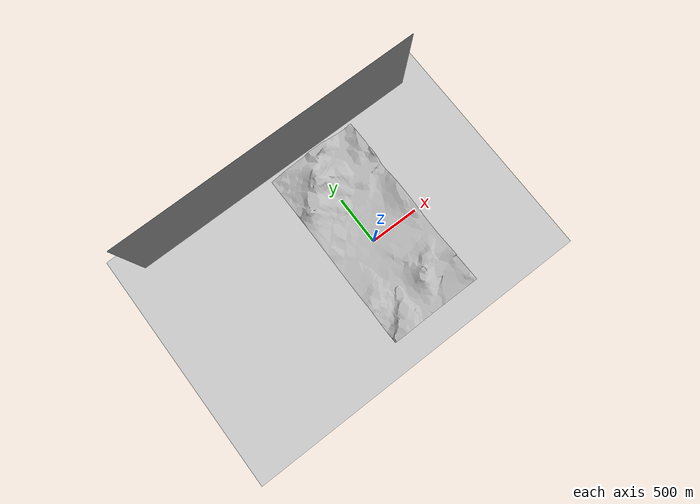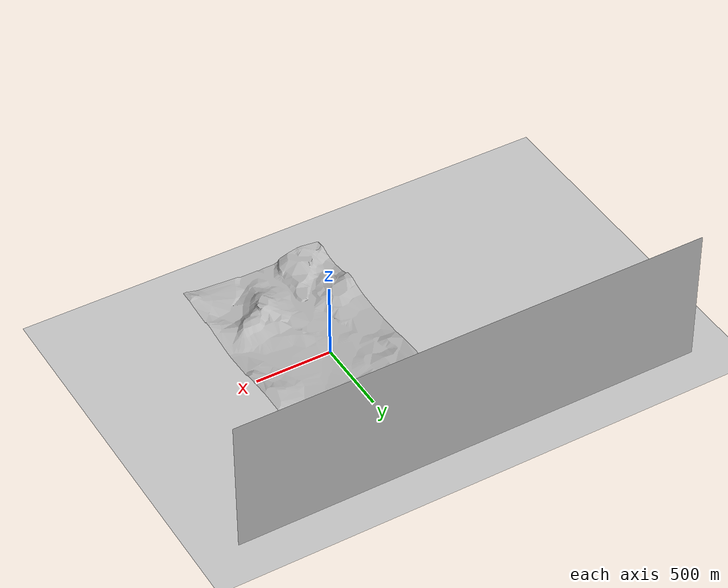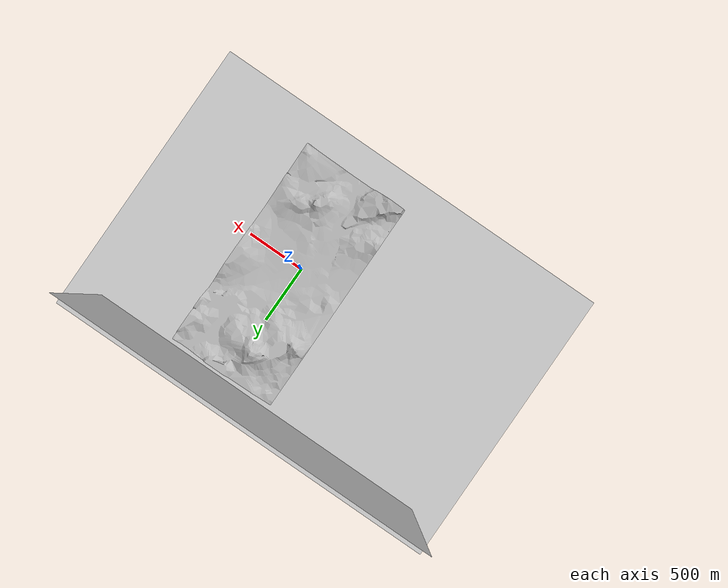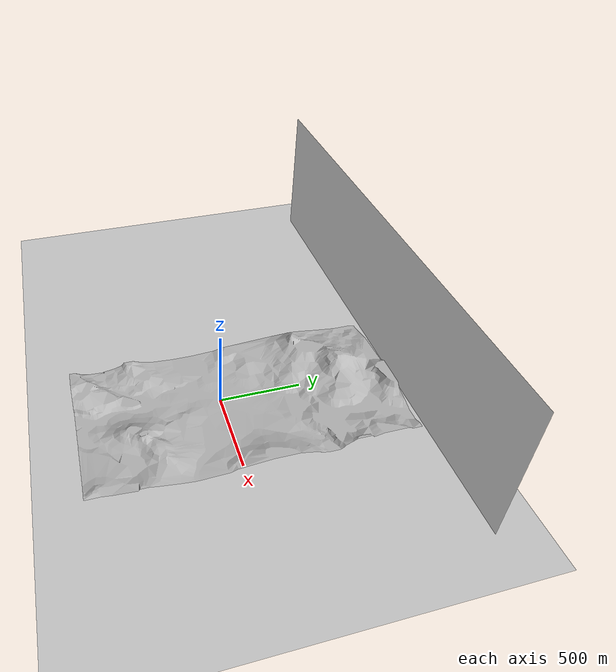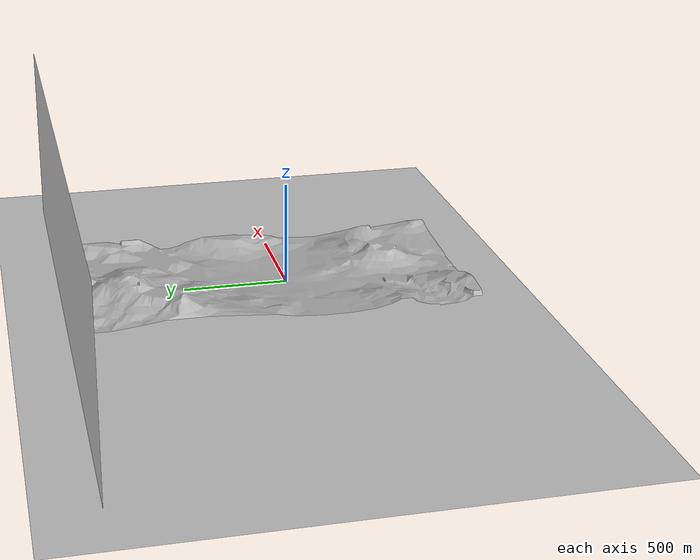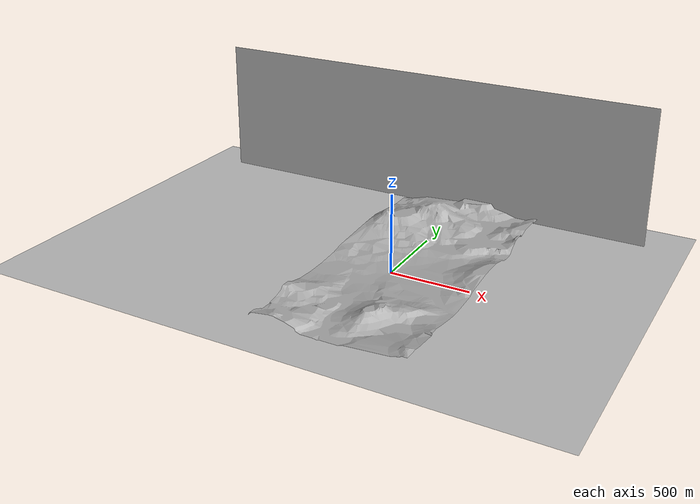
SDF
<sdf version="1.4">
 <world name="default">
  <physics type="ode">
   <gravity>0 0 -9.81</gravity>
   <ode>
    <solver><type>quick</type><iters>20</iters><sor>1.0</sor></solver>
    <constraints>
     <cfm>0.0</cfm>
     <erp>0.2</erp>
     <contact_max_correcting_vel>100.0</contact_max_correcting_vel>
     <contact_surface_layer>0.0</contact_surface_layer>
    </constraints>
   </ode>
   <real_time_update_rate>1000</real_time_update_rate>
   <max_step_size>0.001</max_step_size>
  </physics>
  <light name="light1" type="directional">
   <pose>-6 0 6 0 0.6 0</pose>
   <diffuse>0.0 0.0 0.0 1.0</diffuse>
   <specular>0.1 0.1 0.1 1</specular>
   <attenuation>
    <range>30</range>
    <constant>0.9</constant>
    <linear>0.01</linear>
    <quadratic>0.001</quadratic>
   </attenuation>
   <direction>0.2 0.0 -1.0</direction>
  </light>
  <include><uri>model://sun</uri></include>
  <include><uri>model://desert</uri><pose>25.0 -30 -34 0 0 0.0</pose></include>
  <model name="ground_plane">
   <static>1</static>
   <link name="link">
    <collision name="collision">
     <geometry><plane><normal>0 0 1</normal><size>100 100</size></plane></geometry>
     <surface><friction><ode><mu>100</mu><mu2>50</mu2></ode></friction></surface>
    </collision>
    <visual name="visual">
     <cast_shadows>0</cast_shadows>
     <geometry><plane><normal>0 0 1</normal><size>100 100</size></plane></geometry>
     <material>
      <script><uri>file://media/materials/scripts/gazebo.material</uri><name>Gazebo/Grey</name></script>
     </material>
    </visual>
   </link>
  </model>
  <model name="drc_practice_4x4x20_6">
   <pose>-0.684784 -0.095033 0.099548 -1e-06 -0 -1.55908</pose>
   <link name="lumber_4x4x20::link">
    <inertial>
     <mass>1.37</mass>
     <inertia><ixx>0.0018</ixx><ixy>0</ixy><ixz>0</ixz><iyy>0.0303</iyy><iyz>0</iyz><izz>0.0303</izz></inertia>
    </inertial>
    <collision name="collision">
     <geometry><box><size>0.508 0.0888 0.0888</size></box></geometry>
     <surface>
      <bounce><restitution_coefficient>0</restitution_coefficient><threshold>2</threshold></bounce>
      <friction><ode><mu>10</mu><mu2>10</mu2></ode></friction>
      <contact><ode><soft_cfm>0.001</soft_cfm><kp>100000</kp><kd>1000</kd></ode></contact>
     </surface>
    </collision>
    <visual name="visual">
     <geometry><mesh><uri>model://drc_practice_4x4x20/meshes/4x4x20.dae</uri></mesh></geometry>
    </visual>
   </link>
  </model>
  <model name="drc_practice_4x4x20_3">
   <pose>0.315581 0.035823 0.099548 -1e-06 -0 -1.61947</pose>
   <link name="lumber_4x4x20::link">
    <inertial>
     <mass>1.37</mass>
     <inertia><ixx>0.0018</ixx><ixy>0</ixy><ixz>0</ixz><iyy>0.0303</iyy><iyz>0</iyz><izz>0.0303</izz></inertia>
    </inertial>
    <collision name="collision">
     <geometry><box><size>0.508 0.0888 0.0888</size></box></geometry>
     <surface>
      <bounce><restitution_coefficient>0</restitution_coefficient><threshold>2</threshold></bounce>
      <friction><ode><mu>10</mu><mu2>10</mu2></ode></friction>
      <contact><ode><soft_cfm>0.001</soft_cfm><kp>100000</kp><kd>1000</kd></ode></contact>
     </surface>
    </collision>
    <visual name="visual">
     <geometry><mesh><uri>model://drc_practice_4x4x20/meshes/4x4x20.dae</uri></mesh></geometry>
    </visual>
   </link>
  </model>
  <model name="drc_practice_4x4x20_8">
   <pose>-0.652132 -1.14382 0.099548 -1e-06 1.05879e-22 -1.55009</pose>
   <link name="lumber_4x4x20::link">
    <inertial>
     <mass>1.37</mass>
     <inertia><ixx>0.0018</ixx><ixy>0</ixy><ixz>0</ixz><iyy>0.0303</iyy><iyz>0</iyz><izz>0.0303</izz></inertia>
    </inertial>
    <collision name="collision">
     <geometry><box><size>0.508 0.0888 0.0888</size></box></geometry>
     <surface>
      <bounce><restitution_coefficient>0</restitution_coefficient><threshold>2</threshold></bounce>
      <friction><ode><mu>10</mu><mu2>10</mu2></ode></friction>
      <contact><ode><soft_cfm>0.001</soft_cfm><kp>100000</kp><kd>1000</kd></ode></contact>
     </surface>
    </collision>
    <visual name="visual">
     <geometry><mesh><uri>model://drc_practice_4x4x20/meshes/4x4x20.dae</uri></mesh></geometry>
    </visual>
   </link>
  </model>
  <model name="drc_practice_4x4x20_9">
   <pose>0.2907 -1.12778 0.099548 -1e-06 -0 -1.58067</pose>
   <link name="lumber_4x4x20::link">
    <inertial>
     <mass>1.37</mass>
     <inertia><ixx>0.0018</ixx><ixy>0</ixy><ixz>0</ixz><iyy>0.0303</iyy><iyz>0</iyz><izz>0.0303</izz></inertia>
    </inertial>
    <collision name="collision">
     <geometry><box><size>0.508 0.0888 0.0888</size></box></geometry>
     <surface>
      <bounce><restitution_coefficient>0</restitution_coefficient><threshold>2</threshold></bounce>
      <friction><ode><mu>10</mu><mu2>10</mu2></ode></friction>
      <contact><ode><soft_cfm>0.001</soft_cfm><kp>100000</kp><kd>1000</kd></ode></contact>
     </surface>
    </collision>
    <visual name="visual">
     <geometry><mesh><uri>model://drc_practice_4x4x20/meshes/4x4x20.dae</uri></mesh></geometry>
    </visual>
   </link>
  </model>
  <model name="drc_practice_4x4x20_2">
   <pose>0.304742 -0.47945 0.099548 -1e-06 -0 1.54526</pose>
   <link name="lumber_4x4x20::link">
    <inertial>
     <mass>1.37</mass>
     <inertia><ixx>0.0018</ixx><ixy>0</ixy><ixz>0</ixz><iyy>0.0303</iyy><iyz>0</iyz><izz>0.0303</izz></inertia>
    </inertial>
    <collision name="collision">
     <geometry><box><size>0.508 0.0888 0.0888</size></box></geometry>
     <surface>
      <bounce><restitution_coefficient>0</restitution_coefficient><threshold>2</threshold></bounce>
      <friction><ode><mu>10</mu><mu2>10</mu2></ode></friction>
      <contact><ode><soft_cfm>0.001</soft_cfm><kp>100000</kp><kd>1000</kd></ode></contact>
     </surface>
    </collision>
    <visual name="visual">
     <geometry><mesh><uri>model://drc_practice_4x4x20/meshes/4x4x20.dae</uri></mesh></geometry>
    </visual>
   </link>
  </model>
  <model name="drc_practice_4x4x20_4">
   <pose>0.018767 0.246838 0.099548 -1e-06 2.58494e-26 -0.000303</pose>
   <link name="lumber_4x4x20::link">
    <inertial>
     <mass>1.37</mass>
     <inertia><ixx>0.0018</ixx><ixy>0</ixy><ixz>0</ixz><iyy>0.0303</iyy><iyz>0</iyz><izz>0.0303</izz></inertia>
    </inertial>
    <collision name="collision">
     <geometry><box><size>0.508 0.0888 0.0888</size></box></geometry>
     <surface>
      <bounce><restitution_coefficient>0</restitution_coefficient><threshold>2</threshold></bounce>
      <friction><ode><mu>10</mu><mu2>10</mu2></ode></friction>
      <contact><ode><soft_cfm>0.001</soft_cfm><kp>100000</kp><kd>1000</kd></ode></contact>
     </surface>
    </collision>
    <visual name="visual">
     <geometry><mesh><uri>model://drc_practice_4x4x20/meshes/4x4x20.dae</uri></mesh></geometry>
    </visual>
   </link>
  </model>
  <model name="drc_practice_4x4x20_5">
   <pose>-0.490747 0.239631 0.099548 -1e-06 8.27181e-25 0.01284</pose>
   <link name="lumber_4x4x20::link">
    <inertial>
     <mass>1.37</mass>
     <inertia><ixx>0.0018</ixx><ixy>0</ixy><ixz>0</ixz><iyy>0.0303</iyy><iyz>0</iyz><izz>0.0303</izz></inertia>
    </inertial>
    <collision name="collision">
     <geometry><box><size>0.508 0.0888 0.0888</size></box></geometry>
     <surface>
      <bounce><restitution_coefficient>0</restitution_coefficient><threshold>2</threshold></bounce>
      <friction><ode><mu>10</mu><mu2>10</mu2></ode></friction>
      <contact><ode><soft_cfm>0.001</soft_cfm><kp>100000</kp><kd>1000</kd></ode></contact>
     </surface>
    </collision>
    <visual name="visual">
     <geometry><mesh><uri>model://drc_practice_4x4x20/meshes/4x4x20.dae</uri></mesh></geometry>
    </visual>
   </link>
  </model>
  <model name="drc_practice_base_4x8_0">
   <pose>-0.146396 -0.903118 0.029782 0 -0 0</pose>
   <static>1</static>
   <link name="drc_practice_base::platform">
    <collision name="collision">
     <geometry><box><size>1.2192 2.4384 0.0254</size></box></geometry>
     <surface><friction><ode><mu>100</mu><mu2>50</mu2></ode></friction></surface>
    </collision>
    <visual name="visual">
     <geometry><mesh><uri>model://drc_practice_base_4x8/meshes/4x8ftbase.dae</uri></mesh></geometry>
    </visual>
    <pose>0 0 0.0127 0 -0 0</pose>
   </link>
  </model>
  <model name="drc_practice_4x4x20_7">
   <pose>-0.674757 -0.6303 0.099548 -1e-06 -0 -1.5083</pose>
   <link name="lumber_4x4x20::link">
    <inertial>
     <mass>1.37</mass>
     <inertia><ixx>0.0018</ixx><ixy>0</ixy><ixz>0</ixz><iyy>0.0303</iyy><iyz>0</iyz><izz>0.0303</izz></inertia>
    </inertial>
    <collision name="collision">
     <geometry><box><size>0.508 0.0888 0.0888</size></box></geometry>
     <surface>
      <bounce><restitution_coefficient>0</restitution_coefficient><threshold>2</threshold></bounce>
      <friction><ode><mu>10</mu><mu2>10</mu2></ode></friction>
      <contact><ode><soft_cfm>0.001</soft_cfm><kp>100000</kp><kd>1000</kd></ode></contact>
     </surface>
    </collision>
    <visual name="visual">
     <geometry><mesh><uri>model://drc_practice_4x4x20/meshes/4x4x20.dae</uri></mesh></geometry>
    </visual>
   </link>
  </model>
  <model name="drc_practice_4x4x20_0">
   <pose>0.014141 -0.802557 0.099548 -1e-06 5.16988e-26 0.000506</pose>
   <link name="lumber_4x4x20::link">
    <inertial>
     <mass>1.37</mass>
     <inertia><ixx>0.0018</ixx><ixy>0</ixy><ixz>0</ixz><iyy>0.0303</iyy><iyz>0</iyz><izz>0.0303</izz></inertia>
    </inertial>
    <collision name="collision">
     <geometry><box><size>0.508 0.0888 0.0888</size></box></geometry>
     <surface>
      <bounce><restitution_coefficient>0</restitution_coefficient><threshold>2</threshold></bounce>
      <friction><ode><mu>10</mu><mu2>10</mu2></ode></friction>
      <contact><ode><soft_cfm>0.001</soft_cfm><kp>100000</kp><kd>1000</kd></ode></contact>
     </surface>
    </collision>
    <visual name="visual">
     <geometry><mesh><uri>model://drc_practice_4x4x20/meshes/4x4x20.dae</uri></mesh></geometry>
    </visual>
   </link>
  </model>
  <model name="drc_practice_4x4x20_1">
   <pose>-0.390015 -1.45903 0.099548 -1e-06 0 0</pose>
   <link name="lumber_4x4x20::link">
    <inertial>
     <mass>1.37</mass>
     <inertia><ixx>0.0018</ixx><ixy>0</ixy><ixz>0</ixz><iyy>0.0303</iyy><iyz>0</iyz><izz>0.0303</izz></inertia>
    </inertial>
    <collision name="collision">
     <geometry><box><size>0.508 0.0888 0.0888</size></box></geometry>
     <surface>
      <bounce><restitution_coefficient>0</restitution_coefficient><threshold>2</threshold></bounce>
      <friction><ode><mu>10</mu><mu2>10</mu2></ode></friction>
      <contact><ode><soft_cfm>0.001</soft_cfm><kp>100000</kp><kd>1000</kd></ode></contact>
     </surface>
    </collision>
    <visual name="visual">
     <geometry><mesh><uri>model://drc_practice_4x4x20/meshes/4x4x20.dae</uri></mesh></geometry>
    </visual>
   </link>
  </model>
  <model name="drc_practice_4x4x20_10">
   <pose>0.287459 -1.65024 0.099548 -1e-06 -0 1.59485</pose>
   <link name="lumber_4x4x20::link">
    <inertial>
     <mass>1.37</mass>
     <inertia><ixx>0.0018</ixx><ixy>0</ixy><ixz>0</ixz><iyy>0.0303</iyy><iyz>0</iyz><izz>0.0303</izz></inertia>
    </inertial>
    <collision name="collision">
     <geometry><box><size>0.508 0.0888 0.0888</size></box></geometry>
     <surface>
      <bounce><restitution_coefficient>0</restitution_coefficient><threshold>2</threshold></bounce>
      <friction><ode><mu>10</mu><mu2>10</mu2></ode></friction>
      <contact><ode><soft_cfm>0.001</soft_cfm><kp>100000</kp><kd>1000</kd></ode></contact>
     </surface>
    </collision>
    <visual name="visual">
     <geometry><mesh><uri>model://drc_practice_4x4x20/meshes/4x4x20.dae</uri></mesh></geometry>
    </visual>
   </link>
  </model>
  <model name="drc_practice_4x4x20_11">
   <pose>-0.660348 -1.76781 0.099548 -1.5708 5.55112e-17 -1.54794</pose>
   <link name="lumber_4x4x20::link">
    <inertial>
     <mass>1.37</mass>
     <inertia><ixx>0.0018</ixx><ixy>0</ixy><ixz>0</ixz><iyy>0.0303</iyy><iyz>0</iyz><izz>0.0303</izz></inertia>
    </inertial>
    <collision name="collision">
     <geometry><box><size>0.508 0.0888 0.0888</size></box></geometry>
     <surface>
      <bounce><restitution_coefficient>0</restitution_coefficient><threshold>2</threshold></bounce>
      <friction><ode><mu>10</mu><mu2>10</mu2></ode></friction>
      <contact><ode><soft_cfm>0.001</soft_cfm><kp>100000</kp><kd>1000</kd></ode></contact>
     </surface>
    </collision>
    <visual name="visual">
     <geometry><mesh><uri>model://drc_practice_4x4x20/meshes/4x4x20.dae</uri></mesh></geometry>
    </visual>
   </link>
  </model>
 </world>
</sdf>

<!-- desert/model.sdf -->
<sdf version="1.4">
  <model name="desert">
    <static>1</static>
    <link name="link">
      <collision name="colision1">
        <pose>0 0 0 0 0 0</pose>
        <geometry>
          <mesh>
            <uri>model://desert/meshes/Mountains.dae</uri>
            <scale>1 1 1</scale>
          </mesh>
        </geometry>
        <surface>
          <bounce />
          <friction>
            <ode />
          </friction>
          <contact>
            <ode />
          </contact>
        </surface>
      </collision>
      <visual name="visual1">
        <pose>0 0 0 0 0 0</pose>
        <geometry>
          <mesh>
            <uri>model://desert/meshes/Mountains.dae</uri>
            <scale>1 1 1</scale>
          </mesh>
        </geometry>
      </visual>
    </link>
  </model>
</sdf>
